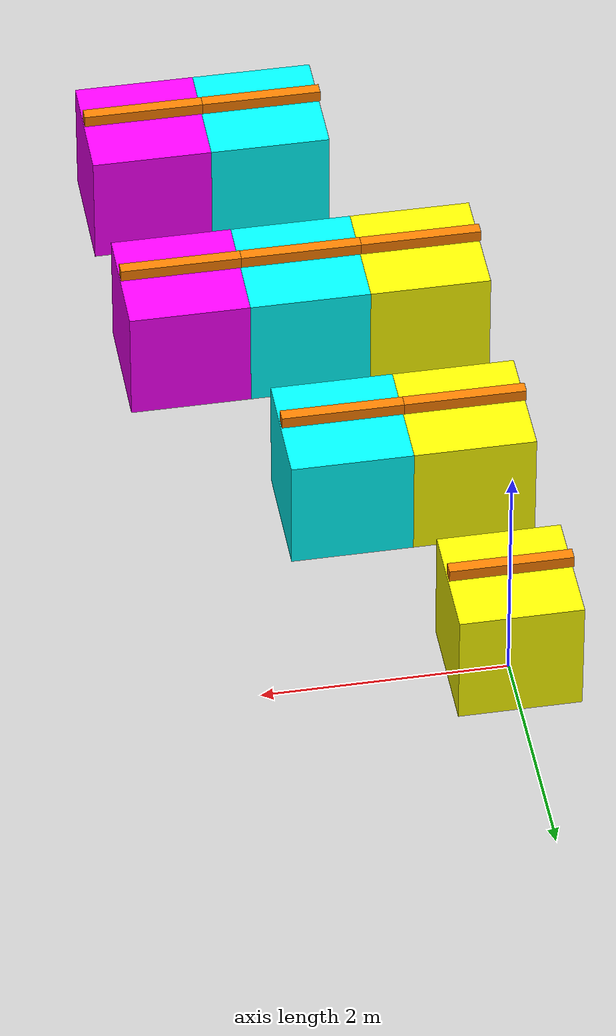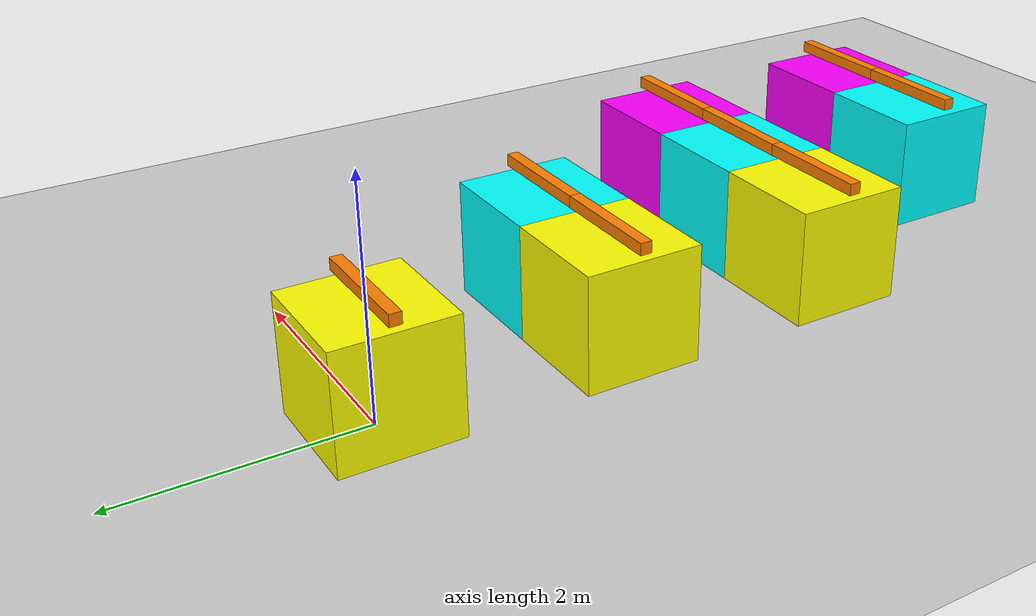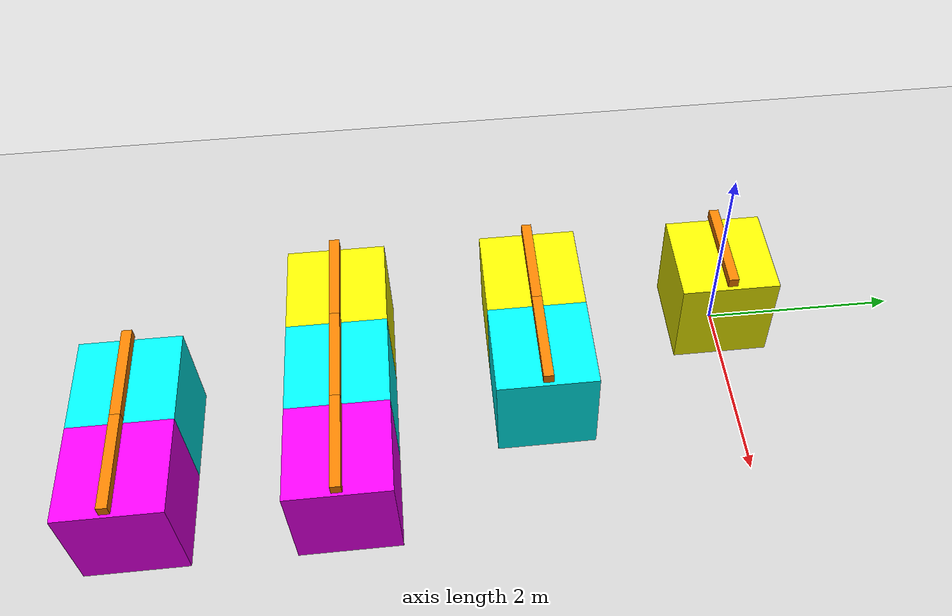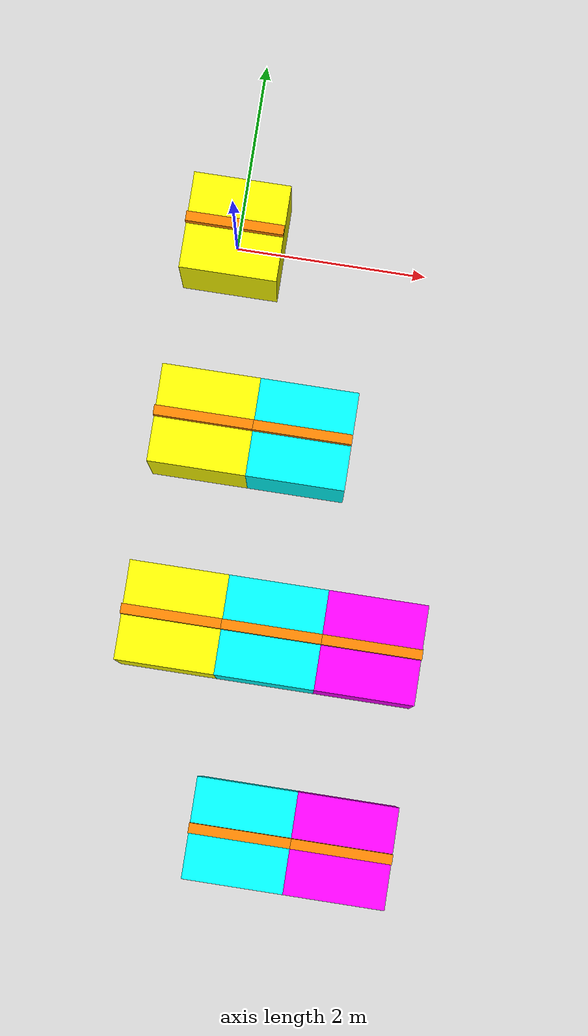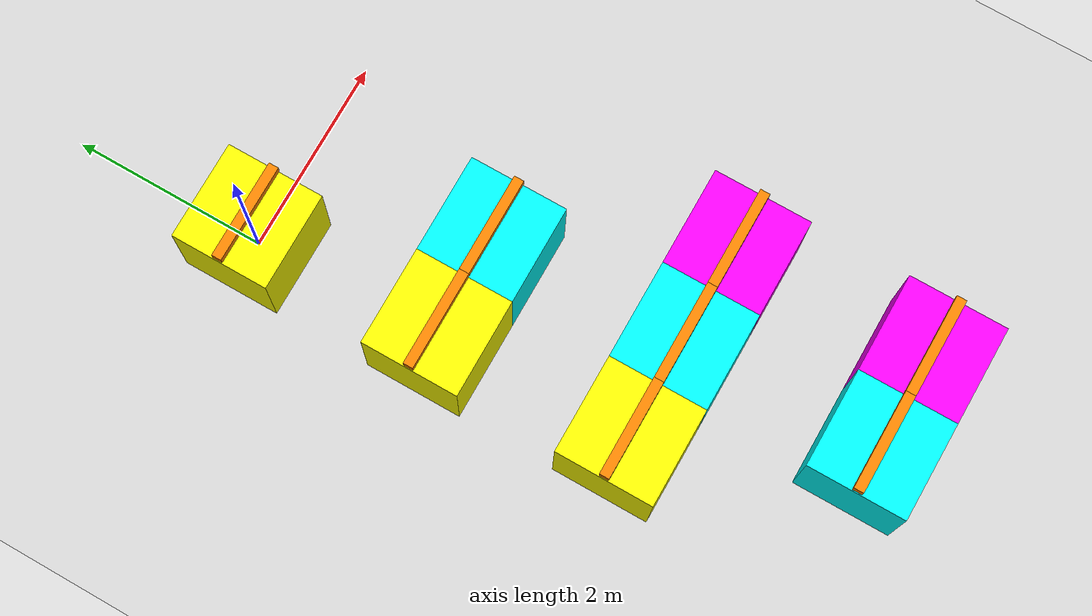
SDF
<?xml version="1.0" ?>

<sdf version="1.6">
  <world name="nested_model_joint_positions">
    <plugin
      filename="gz-sim-apply-link-wrench-system"
      name="gz::sim::systems::ApplyLinkWrench">
    </plugin>

    <physics name="1ms" type="ignore">
      <max_step_size>0.001</max_step_size>
      <real_time_factor>0</real_time_factor>
    </physics>

    <plugin filename="gz-sim-physics-system"
      name="gz::sim::systems::Physics">
    </plugin>
    <plugin filename="gz-sim-user-commands-system"
      name="gz::sim::systems::UserCommands">
    </plugin>
    <plugin filename="gz-sim-scene-broadcaster-system"
      name="gz::sim::systems::SceneBroadcaster">
    </plugin>

    <scene>
      <ambient>1.0 1.0 1.0</ambient>
      <background>0.8 0.8 0.8</background>
    </scene>

    <light type="directional" name="sun">
      <cast_shadows>true</cast_shadows>
      <pose>0 0 10 0 0 0</pose>
      <diffuse>0.8 0.8 0.8 1</diffuse>
      <specular>0.8 0.8 0.8 1</specular>
      <attenuation>
        <range>1000</range>
        <constant>0.9</constant>
        <linear>0.01</linear>
        <quadratic>0.001</quadratic>
      </attenuation>
      <direction>-0.5 0.1 -0.9</direction>
    </light>

    <model name="ground_plane">
      <static>true</static>
      <link name="link">
        <collision name="collision">
          <geometry>
            <plane>
              <normal>0 0 1</normal>
              <size>100 100</size>
            </plane>
          </geometry>
        </collision>
        <visual name="visual">
          <geometry>
            <plane>
              <normal>0 0 1</normal>
              <size>100 100</size>
            </plane>
          </geometry>
          <material>
            <ambient>0.8 0.8 0.8 1</ambient>
            <diffuse>0.8 0.8 0.8 1</diffuse>
            <specular>0.8 0.8 0.8 1</specular>
          </material>
        </visual>
      </link>
    </model>

    <!--
      1. Model with a position controlled joint.

      Links:
        model1::base_link
        model1::rotor_link

      Joints:
        model1::rotor_joint
    -->
    <model name="model1">
      <pose>0 0 0.5 0 0 0</pose>
      <link name="base_link">
        <inertial>
          <mass>1.0</mass>
          <inertia>
            <ixx>0.166666667</ixx>
            <ixy>0.00</ixy>
            <ixz>0.00</ixz>
            <iyy>0.166666667</iyy>
            <iyz>0.00</iyz>
            <izz>0.166666667</izz>
          </inertia>
        </inertial>
        <visual name="visual">
          <geometry>
            <box>
              <size>1 1 1</size>
            </box>
          </geometry>
          <material>
            <ambient>1 1 0</ambient>
            <diffuse>1 1 0</diffuse>
            <specular>0.1 0.1 0 1</specular>
          </material>
        </visual>
        <collision name="collision">
          <geometry>
            <box>
              <size>1 1 1</size>
            </box>
          </geometry>
        </collision>
      </link>
      <link name="rotor_link">
        <pose>0 0 0.6 0 0 0</pose>
        <inertial>
          <mass>0.01</mass>
          <inertia>
            <ixx>1.66667E-05</ixx>
            <ixy>0.00</ixy>
            <ixz>0.00</ixz>
            <iyy>0.000841667</iyy>
            <iyz>0.00</iyz>
            <izz>0.000841667</izz>
          </inertia>
        </inertial>
        <visual name="visual">
          <geometry>
            <box>
              <size>1 0.1 0.1</size>
            </box>
          </geometry>
          <material>
            <ambient>1 0.5 0</ambient>
            <diffuse>1 0.5 0</diffuse>
            <specular>0.1 0.1 0 1</specular>
          </material>
        </visual>
        <collision name="collision">
          <geometry>
            <box>
              <size>1 0.1 0.1</size>
            </box>
          </geometry>
        </collision>
      </link>
      <joint name="rotor_joint" type="revolute">
        <parent>base_link</parent>
        <child>rotor_link</child>
        <axis>
          <dynamics>
            <damping>0.5</damping>
          </dynamics>
          <limit>
            <lower>-3.14159265</lower>
            <upper>3.14159265</upper>
          </limit>
          <xyz>0 0 1</xyz>
        </axis>
      </joint>
      <plugin
        filename="gz-sim-joint-position-controller-system"
        name="gz::sim::systems::JointPositionController">
        <joint_name>rotor_joint</joint_name>
        <topic>/model1/cmd_rotor</topic>
        <p_gain>30</p_gain>
        <i_gain>0.05</i_gain>
      </plugin>
    </model>

    <model name="model2">
      <pose>0 -2 0.5 0 0 0</pose>
      <link name="base_link">
        <inertial>
          <mass>1.0</mass>
          <inertia>
            <ixx>0.166666667</ixx>
            <ixy>0.00</ixy>
            <ixz>0.00</ixz>
            <iyy>0.166666667</iyy>
            <iyz>0.00</iyz>
            <izz>0.166666667</izz>
          </inertia>
        </inertial>
        <visual name="visual">
          <geometry>
            <box>
              <size>1 1 1</size>
            </box>
          </geometry>
          <material>
            <ambient>1 1 0</ambient>
            <diffuse>1 1 0</diffuse>
            <specular>0.1 0.1 0 1</specular>
          </material>
        </visual>
        <collision name="collision">
          <geometry>
            <box>
              <size>1 1 1</size>
            </box>
          </geometry>
        </collision>
      </link>
      <link name="rotor_link">
        <pose>0 0 0.6 0 0 0</pose>
        <inertial>
          <mass>0.01</mass>
          <inertia>
            <ixx>1.66667E-05</ixx>
            <ixy>0.00</ixy>
            <ixz>0.00</ixz>
            <iyy>0.000841667</iyy>
            <iyz>0.00</iyz>
            <izz>0.000841667</izz>
          </inertia>
        </inertial>
        <visual name="visual">
          <geometry>
            <box>
              <size>1 0.1 0.1</size>
            </box>
          </geometry>
          <material>
            <ambient>1 0.5 0</ambient>
            <diffuse>1 0.5 0</diffuse>
            <specular>0.1 0.1 0 1</specular>
          </material>
        </visual>
        <collision name="collision">
          <geometry>
            <box>
              <size>1 0.1 0.1</size>
            </box>
          </geometry>
        </collision>
      </link>
      <joint name="rotor_joint" type="revolute">
        <parent>base_link</parent>
        <child>rotor_link</child>
        <axis>
          <dynamics>
            <damping>0.5</damping>
          </dynamics>
          <limit>
            <lower>-3.14159265</lower>
            <upper>3.14159265</upper>
          </limit>
          <xyz>0 0 1</xyz>
        </axis>
      </joint>
      <model name="model21">
        <pose>1 0 0 0 0 0</pose>
        <link name="base_link">
          <inertial>
            <mass>1.0</mass>
            <inertia>
              <ixx>0.166666667</ixx>
              <ixy>0.00</ixy>
              <ixz>0.00</ixz>
              <iyy>0.166666667</iyy>
              <iyz>0.00</iyz>
              <izz>0.166666667</izz>
            </inertia>
          </inertial>
          <visual name="visual">
            <geometry>
              <box>
                <size>1 1 1</size>
              </box>
            </geometry>
            <material>
              <ambient>0 1 1</ambient>
              <diffuse>0 1 1</diffuse>
              <specular>0.1 0.1 0 1</specular>
            </material>
          </visual>
          <collision name="collision">
            <geometry>
              <box>
                <size>1 1 1</size>
              </box>
            </geometry>
          </collision>
        </link>
        <link name="rotor_link">
          <pose>0 0 0.6 0 0 0</pose>
          <inertial>
            <mass>0.01</mass>
            <inertia>
              <ixx>1.66667E-05</ixx>
              <ixy>0.00</ixy>
              <ixz>0.00</ixz>
              <iyy>0.000841667</iyy>
              <iyz>0.00</iyz>
              <izz>0.000841667</izz>
            </inertia>
          </inertial>
          <visual name="visual">
            <geometry>
              <box>
                <size>1 0.1 0.1</size>
              </box>
            </geometry>
            <material>
              <ambient>1 0.5 0</ambient>
              <diffuse>1 0.5 0</diffuse>
              <specular>0.1 0.1 0 1</specular>
            </material>
          </visual>
          <collision name="collision">
            <geometry>
              <box>
                <size>1 0.1 0.1</size>
              </box>
            </geometry>
          </collision>
        </link>
        <joint name="rotor_joint" type="revolute">
          <parent>base_link</parent>
          <child>rotor_link</child>
          <axis>
            <dynamics>
              <damping>0.5</damping>
            </dynamics>
            <limit>
              <lower>-3.14159265</lower>
              <upper>3.14159265</upper>
            </limit>
            <xyz>0 0 1</xyz>
          </axis>
        </joint>
      </model>
      <joint name="model21_joint" type="revolute">
        <parent>base_link</parent>
        <child>model21::base_link</child>
        <axis>
          <dynamics>
            <damping>1</damping>
          </dynamics>
          <limit>
            <lower>0</lower>
            <upper>0</upper>
          </limit>
          <xyz>0 0 1</xyz>
        </axis>
      </joint>
      <plugin
        filename="gz-sim-joint-position-controller-system"
        name="gz::sim::systems::JointPositionController">
        <joint_name>rotor_joint</joint_name>
        <topic>/model2/cmd_rotor</topic>
        <p_gain>30</p_gain>
        <i_gain>0.05</i_gain>
      </plugin>
      <plugin
        filename="gz-sim-joint-position-controller-system"
        name="gz::sim::systems::JointPositionController">
        <joint_name>model21::rotor_joint</joint_name>
        <topic>/model21/cmd_rotor</topic>
        <p_gain>30</p_gain>
        <i_gain>0.05</i_gain>
      </plugin>
    </model>

    <model name="model3">
      <pose>0 -4 0.5 0 0 0</pose>
      <link name="base_link">
        <inertial>
          <mass>1.0</mass>
          <inertia>
            <ixx>0.166666667</ixx>
            <ixy>0.00</ixy>
            <ixz>0.00</ixz>
            <iyy>0.166666667</iyy>
            <iyz>0.00</iyz>
            <izz>0.166666667</izz>
          </inertia>
        </inertial>
        <visual name="visual">
          <geometry>
            <box>
              <size>1 1 1</size>
            </box>
          </geometry>
          <material>
            <ambient>1 1 0</ambient>
            <diffuse>1 1 0</diffuse>
            <specular>0.1 0.1 0 1</specular>
          </material>
        </visual>
        <collision name="collision">
          <geometry>
            <box>
              <size>1 1 1</size>
            </box>
          </geometry>
        </collision>
      </link>
      <link name="rotor_link">
        <pose>0 0 0.6 0 0 0</pose>
        <inertial>
          <mass>0.01</mass>
          <inertia>
            <ixx>1.66667E-05</ixx>
            <ixy>0.00</ixy>
            <ixz>0.00</ixz>
            <iyy>0.000841667</iyy>
            <iyz>0.00</iyz>
            <izz>0.000841667</izz>
          </inertia>
        </inertial>
        <visual name="visual">
          <geometry>
            <box>
              <size>1 0.1 0.1</size>
            </box>
          </geometry>
          <material>
            <ambient>1 0.5 0</ambient>
            <diffuse>1 0.5 0</diffuse>
            <specular>0.1 0.1 0 1</specular>
          </material>
        </visual>
        <collision name="collision">
          <geometry>
            <box>
              <size>1 0.1 0.1</size>
            </box>
          </geometry>
        </collision>
      </link>
      <joint name="rotor_joint" type="revolute">
        <parent>base_link</parent>
        <child>rotor_link</child>
        <axis>
          <dynamics>
            <damping>0.5</damping>
          </dynamics>
          <limit>
            <lower>-3.14159265</lower>
            <upper>3.14159265</upper>
          </limit>
          <xyz>0 0 1</xyz>
        </axis>
      </joint>
      <model name="model31">
        <pose>1 0 0 0 0 0</pose>
        <link name="base_link">
          <inertial>
            <mass>1.0</mass>
            <inertia>
              <ixx>0.166666667</ixx>
              <ixy>0.00</ixy>
              <ixz>0.00</ixz>
              <iyy>0.166666667</iyy>
              <iyz>0.00</iyz>
              <izz>0.166666667</izz>
            </inertia>
          </inertial>
          <visual name="visual">
            <geometry>
              <box>
                <size>1 1 1</size>
              </box>
            </geometry>
            <material>
              <ambient>0 1 1</ambient>
              <diffuse>0 1 1</diffuse>
              <specular>0.1 0.1 0 1</specular>
            </material>
          </visual>
          <collision name="collision">
            <geometry>
              <box>
                <size>1 1 1</size>
              </box>
            </geometry>
          </collision>
        </link>
        <link name="rotor_link">
          <pose>0 0 0.6 0 0 0</pose>
          <inertial>
            <mass>0.01</mass>
            <inertia>
              <ixx>1.66667E-05</ixx>
              <ixy>0.00</ixy>
              <ixz>0.00</ixz>
              <iyy>0.000841667</iyy>
              <iyz>0.00</iyz>
              <izz>0.000841667</izz>
            </inertia>
          </inertial>
          <visual name="visual">
            <geometry>
              <box>
                <size>1 0.1 0.1</size>
              </box>
            </geometry>
            <material>
              <ambient>1 0.5 0</ambient>
              <diffuse>1 0.5 0</diffuse>
              <specular>0.1 0.1 0 1</specular>
            </material>
          </visual>
          <collision name="collision">
            <geometry>
              <box>
                <size>1 0.1 0.1</size>
              </box>
            </geometry>
          </collision>
        </link>
        <joint name="rotor_joint" type="revolute">
          <parent>base_link</parent>
          <child>rotor_link</child>
          <axis>
            <dynamics>
              <damping>0.5</damping>
            </dynamics>
            <limit>
              <lower>-3.14159265</lower>
              <upper>3.14159265</upper>
            </limit>
            <xyz>0 0 1</xyz>
          </axis>
        </joint>
      </model>
      <model name="model32">
        <pose>2 0 0 0 0 0</pose>
        <link name="base_link">
          <inertial>
            <mass>1.0</mass>
            <inertia>
              <ixx>0.166666667</ixx>
              <ixy>0.00</ixy>
              <ixz>0.00</ixz>
              <iyy>0.166666667</iyy>
              <iyz>0.00</iyz>
              <izz>0.166666667</izz>
            </inertia>
          </inertial>
          <visual name="visual">
            <geometry>
              <box>
                <size>1 1 1</size>
              </box>
            </geometry>
            <material>
              <ambient>1 0 1</ambient>
              <diffuse>1 0 1</diffuse>
              <specular>0.1 0.1 0 1</specular>
            </material>
          </visual>
          <collision name="collision">
            <geometry>
              <box>
                <size>1 1 1</size>
              </box>
            </geometry>
          </collision>
        </link>
        <link name="rotor_link">
          <pose>0 0 0.6 0 0 0</pose>
          <inertial>
            <mass>0.01</mass>
            <inertia>
              <ixx>1.66667E-05</ixx>
              <ixy>0.00</ixy>
              <ixz>0.00</ixz>
              <iyy>0.000841667</iyy>
              <iyz>0.00</iyz>
              <izz>0.000841667</izz>
            </inertia>
          </inertial>
          <visual name="visual">
            <geometry>
              <box>
                <size>1 0.1 0.1</size>
              </box>
            </geometry>
            <material>
              <ambient>1 0.5 0</ambient>
              <diffuse>1 0.5 0</diffuse>
              <specular>0.1 0.1 0 1</specular>
            </material>
          </visual>
          <collision name="collision">
            <geometry>
              <box>
                <size>1 0.1 0.1</size>
              </box>
            </geometry>
          </collision>
        </link>
        <joint name="rotor_joint" type="revolute">
          <parent>base_link</parent>
          <child>rotor_link</child>
          <axis>
            <dynamics>
              <damping>0.5</damping>
            </dynamics>
            <limit>
              <lower>-3.14159265</lower>
              <upper>3.14159265</upper>
            </limit>
            <xyz>0 0 1</xyz>
          </axis>
        </joint>
      </model>
      <joint name="model31_joint" type="revolute">
        <parent>base_link</parent>
        <child>model31::base_link</child>
        <axis>
          <dynamics>
            <damping>1</damping>
          </dynamics>
          <limit>
            <lower>0</lower>
            <upper>0</upper>
          </limit>
          <xyz>0 0 1</xyz>
        </axis>
      </joint>
      <joint name="model32_joint" type="revolute">
        <parent>model31::base_link</parent>
        <child>model32::base_link</child>
        <axis>
          <dynamics>
            <damping>1</damping>
          </dynamics>
          <limit>
            <lower>0</lower>
            <upper>0</upper>
          </limit>
          <xyz>0 0 1</xyz>
        </axis>
      </joint>
      <plugin
        filename="gz-sim-joint-position-controller-system"
        name="gz::sim::systems::JointPositionController">
        <joint_name>rotor_joint</joint_name>
        <topic>/model3/cmd_rotor</topic>
        <p_gain>30</p_gain>
        <i_gain>0.05</i_gain>
      </plugin>
      <plugin
        filename="gz-sim-joint-position-controller-system"
        name="gz::sim::systems::JointPositionController">
        <joint_name>model31::rotor_joint</joint_name>
        <topic>/model31/cmd_rotor</topic>
        <p_gain>30</p_gain>
        <i_gain>0.05</i_gain>
      </plugin>
      <plugin
        filename="gz-sim-joint-position-controller-system"
        name="gz::sim::systems::JointPositionController">
        <joint_name>model32::rotor_joint</joint_name>
        <topic>/model32/cmd_rotor</topic>
        <p_gain>30</p_gain>
        <i_gain>0.05</i_gain>
      </plugin>
    </model>

    <model name="model4">
      <pose>0 -6 0.5 0 0 0</pose>
      <model name="model41">
        <pose>1 0 0 0 0 0</pose>
        <link name="base_link">
          <inertial>
            <mass>1.0</mass>
            <inertia>
              <ixx>0.166666667</ixx>
              <ixy>0.00</ixy>
              <ixz>0.00</ixz>
              <iyy>0.166666667</iyy>
              <iyz>0.00</iyz>
              <izz>0.166666667</izz>
            </inertia>
          </inertial>
          <visual name="visual">
            <geometry>
              <box>
                <size>1 1 1</size>
              </box>
            </geometry>
            <material>
              <ambient>0 1 1</ambient>
              <diffuse>0 1 1</diffuse>
              <specular>0.1 0.1 0 1</specular>
            </material>
          </visual>
          <collision name="collision">
            <geometry>
              <box>
                <size>1 1 1</size>
              </box>
            </geometry>
          </collision>
        </link>
        <link name="rotor_link">
          <pose>0 0 0.6 0 0 0</pose>
          <inertial>
            <mass>0.01</mass>
            <inertia>
              <ixx>1.66667E-05</ixx>
              <ixy>0.00</ixy>
              <ixz>0.00</ixz>
              <iyy>0.000841667</iyy>
              <iyz>0.00</iyz>
              <izz>0.000841667</izz>
            </inertia>
          </inertial>
          <visual name="visual">
            <geometry>
              <box>
                <size>1 0.1 0.1</size>
              </box>
            </geometry>
            <material>
              <ambient>1 0.5 0</ambient>
              <diffuse>1 0.5 0</diffuse>
              <specular>0.1 0.1 0 1</specular>
            </material>
          </visual>
          <collision name="collision">
            <geometry>
              <box>
                <size>1 0.1 0.1</size>
              </box>
            </geometry>
          </collision>
        </link>
        <joint name="rotor_joint" type="revolute">
          <parent>base_link</parent>
          <child>rotor_link</child>
          <axis>
            <dynamics>
              <damping>0.5</damping>
            </dynamics>
            <limit>
              <lower>-3.14159265</lower>
              <upper>3.14159265</upper>
            </limit>
            <xyz>0 0 1</xyz>
          </axis>
        </joint>
      </model>
      <model name="model42">
        <pose>2 0 0 0 0 0</pose>
        <link name="base_link">
          <inertial>
            <mass>1.0</mass>
            <inertia>
              <ixx>0.166666667</ixx>
              <ixy>0.00</ixy>
              <ixz>0.00</ixz>
              <iyy>0.166666667</iyy>
              <iyz>0.00</iyz>
              <izz>0.166666667</izz>
            </inertia>
          </inertial>
          <visual name="visual">
            <geometry>
              <box>
                <size>1 1 1</size>
              </box>
            </geometry>
            <material>
              <ambient>1 0 1</ambient>
              <diffuse>1 0 1</diffuse>
              <specular>0.1 0.1 0 1</specular>
            </material>
          </visual>
          <collision name="collision">
            <geometry>
              <box>
                <size>1 1 1</size>
              </box>
            </geometry>
          </collision>
        </link>
        <link name="rotor_link">
          <pose>0 0 0.6 0 0 0</pose>
          <inertial>
            <mass>0.01</mass>
            <inertia>
              <ixx>1.66667E-05</ixx>
              <ixy>0.00</ixy>
              <ixz>0.00</ixz>
              <iyy>0.000841667</iyy>
              <iyz>0.00</iyz>
              <izz>0.000841667</izz>
            </inertia>
          </inertial>
          <visual name="visual">
            <geometry>
              <box>
                <size>1 0.1 0.1</size>
              </box>
            </geometry>
            <material>
              <ambient>1 0.5 0</ambient>
              <diffuse>1 0.5 0</diffuse>
              <specular>0.1 0.1 0 1</specular>
            </material>
          </visual>
          <collision name="collision">
            <geometry>
              <box>
                <size>1 0.1 0.1</size>
              </box>
            </geometry>
          </collision>
        </link>
        <joint name="rotor_joint" type="revolute">
          <parent>base_link</parent>
          <child>rotor_link</child>
          <axis>
            <dynamics>
              <damping>0.5</damping>
            </dynamics>
            <limit>
              <lower>-3.14159265</lower>
              <upper>3.14159265</upper>
            </limit>
            <xyz>0 0 1</xyz>
          </axis>
        </joint>
      </model>
      <joint name="model42_joint" type="revolute">
        <parent>model41::base_link</parent>
        <child>model42::base_link</child>
        <axis>
          <dynamics>
            <damping>1</damping>
          </dynamics>
          <limit>
            <lower>0</lower>
            <upper>0</upper>
          </limit>
          <xyz>0 0 1</xyz>
        </axis>
      </joint>
      <plugin
        filename="gz-sim-joint-position-controller-system"
        name="gz::sim::systems::JointPositionController">
        <joint_name>model41::rotor_joint</joint_name>
        <topic>/model41/cmd_rotor</topic>
        <p_gain>30</p_gain>
        <i_gain>0.05</i_gain>
      </plugin>
      <plugin
        filename="gz-sim-joint-position-controller-system"
        name="gz::sim::systems::JointPositionController">
        <joint_name>model42::rotor_joint</joint_name>
        <topic>/model42/cmd_rotor</topic>
        <p_gain>30</p_gain>
        <i_gain>0.05</i_gain>
      </plugin>
    </model>

  </world>
</sdf>
